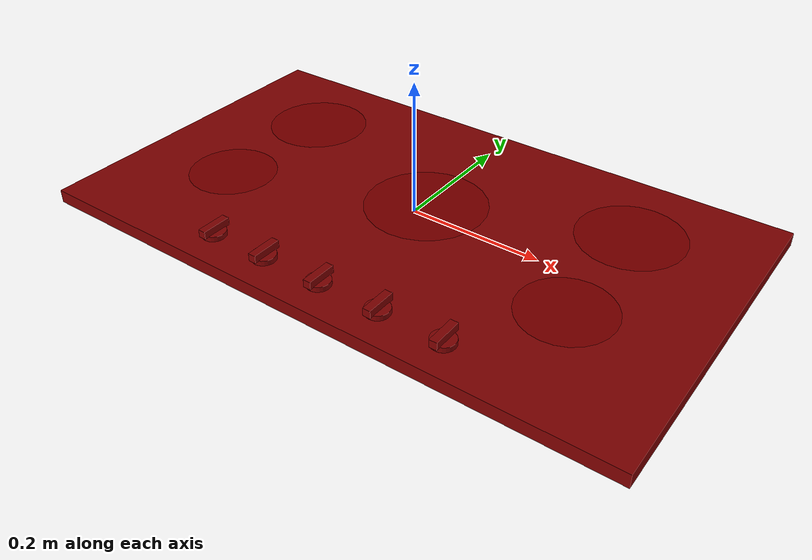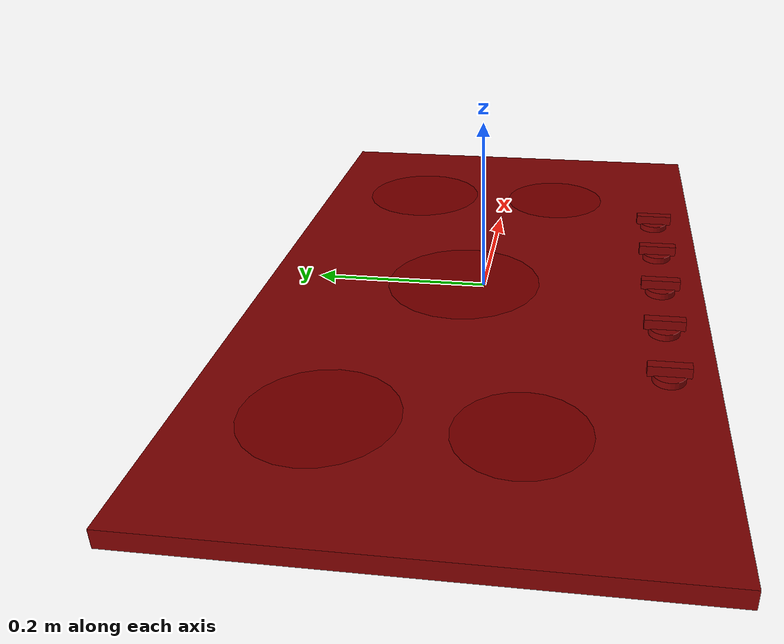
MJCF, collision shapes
<?xml version='1.0' encoding='UTF-8'?>
<mujoco model="model">
  <option timestep="0.002" gravity="0.0 0.0 -9.81"/>
  <compiler angle="radian"/>
  <asset>
    <mesh file="visuals/knob_center.obj" name="knob_center_vis"/>
    <mesh file="visuals/knob_front_left.obj" name="knob_front_left_vis"/>
    <mesh file="visuals/knob_front_right.obj" name="knob_front_right_vis"/>
    <mesh file="visuals/knob_rear_left.obj" name="knob_rear_left_vis"/>
    <mesh file="visuals/knob_rear_right.obj" name="knob_rear_right_vis"/>
    <mesh file="visuals/Body001.obj" name="Body001_vis"/>
    <texture file="visuals/T_BC001.png" name="Body001_material" type="2d"/>
    <material name="Body001_material" rgba="1 1 1 1.0" texture="Body001_material" shininess="0.1" specular="6"/>
    <texture file="visuals/T_BC001.png" name="knob_center_material" type="2d"/>
    <material name="knob_center_material" rgba="1 1 1 1.0" texture="knob_center_material" shininess="0.1" specular="6"/>
    <texture file="visuals/T_BC001.png" name="knob_front_left_material" type="2d"/>
    <material name="knob_front_left_material" rgba="1 1 1 1.0" texture="knob_front_left_material" shininess="0.1" specular="6"/>
    <texture file="visuals/T_BC001.png" name="knob_front_right_material" type="2d"/>
    <material name="knob_front_right_material" rgba="1 1 1 1.0" texture="knob_front_right_material" shininess="0.1" specular="6"/>
    <texture file="visuals/T_BC001.png" name="knob_rear_left_material" type="2d"/>
    <material name="knob_rear_left_material" rgba="1 1 1 1.0" texture="knob_rear_left_material" shininess="0.1" specular="6"/>
    <texture file="visuals/T_BC001.png" name="knob_rear_right_material" type="2d"/>
    <material name="knob_rear_right_material" rgba="1 1 1 1.0" texture="knob_rear_right_material" shininess="0.1" specular="6"/>
  </asset>
  <default>
    <default class="visual">
      <geom conaffinity="0" contype="0" group="1" type="mesh"/>
    </default>
    <default class="collision">
      <geom group="0" rgba="0.5 0 0 0.5"/>
    </default>
    <default class="spawn">
      <geom group="0" rgba="1 1 1 0.5" contype="0" conaffinity="0"/>
      <site group="0" rgba="1 1 1 0.5"/>
    </default>
    <default class="region">
      <geom group="1" conaffinity="0" contype="0" rgba="0 1 0 0"/>
    </default>
  </default>
  <worldbody>
    <body>
      <body name="object">
        <geom mesh="Body001_vis" type="mesh" solimp="0.998 0.998 0.001" solref="0.001 1" friction="0.95 0.3 0.1" class="visual" material="Body001_material"/>
        <geom class="collision" type="box" pos="0.0 -4.331173840910196e-06 -0.009615425020456314" size="0.4550013244152069 0.25999632477760315 0.010000033304095268" quat="1.0 0.0 0.0 0.0"/>
        <body name="knob_center">
          <joint axis="0.0 0.0 1.0" pos="0.0018313440959900618 -0.20912569761276245 0.009779957123100758" limited="true" name="knob_center_joint" range="0.0 3.5779249665883754" type="hinge" damping="0.2" armature="0.01" frictionloss="1"/>
          <geom mesh="knob_center_vis" type="mesh" solimp="0.998 0.998 0.001" solref="0.001 1" friction="0.95 0.3 0.1" class="visual" material="knob_center_material"/>
          <geom class="collision" type="box" pos="0.001687976997345686 -0.20864903926849365 0.014286531135439873" size="0.0057075126096606255 0.022309990599751472 0.005733962636440992" quat="1.0 0.0 0.0 0.0" name="knob_center_main" friction="100 0.5 0.01"/>
          <geom class="collision" type="cylinder" pos="0.0016382745234295726 -0.20906837284564972 0.005588534288108349" size="0.01724424958229065 0.0038178665563464165" quat="1.0 0.0 0.0 0.0" friction="100 0.5 0.01"/>
        </body>
        <body name="knob_front_left">
          <joint axis="0.0 0.0 1.0" pos="-0.18545380234718323 -0.20912569761276245 0.009779957123100758" limited="true" name="knob_front_left_joint" range="0.0 3.5779249665883754" type="hinge" damping="0.2" armature="0.01" frictionloss="1"/>
          <geom mesh="knob_front_left_vis" type="mesh" solimp="0.998 0.998 0.001" solref="0.001 1" friction="0.95 0.3 0.1" class="visual" material="knob_front_left_material"/>
          <geom class="collision" type="cylinder" pos="-0.18538932502269745 -0.20906837284564972 0.005588534288108349" size="0.01724424958229065 0.0038178665563464165" quat="1.0 0.0 0.0 0.0" friction="100 0.5 0.01"/>
          <geom class="collision" type="box" pos="-0.18508179485797882 -0.20864903926849365 0.014286531135439873" size="0.005707519128918648 0.02231001667678356 0.005733969155699015" quat="1.0 0.0 0.0 0.0" name="knob_front_left_main" friction="100 0.5 0.01"/>
        </body>
        <body name="knob_front_right">
          <joint axis="0.0 0.0 1.0" pos="0.19316482543945312 -0.20912569761276245 0.009779957123100758" limited="true" name="knob_front_right_joint" range="0.0 3.5779249665883754" type="hinge" damping="0.2" armature="0.01" frictionloss="1"/>
          <geom mesh="knob_front_right_vis" type="mesh" solimp="0.998 0.998 0.001" solref="0.001 1" friction="0.95 0.3 0.1" class="visual" material="knob_front_right_material"/>
          <geom class="collision" type="box" pos="0.19307716190814972 -0.20864903926849365 0.014286531135439873" size="0.005707506090402603 0.022309966385364532 0.00573395611718297" quat="1.0 0.0 0.0 0.0" name="knob_front_right_main" friction="100 0.5 0.01"/>
          <geom class="collision" type="cylinder" pos="0.19302745163440704 -0.20906837284564972 0.005588534288108349" size="0.01724424958229065 0.0038178665563464165" quat="1.0 0.0 0.0 0.0" friction="100 0.5 0.01"/>
        </body>
        <body name="knob_rear_left">
          <joint axis="0.0 0.0 1.0" pos="-0.09244690090417862 -0.20912569761276245 0.009779957123100758" limited="true" name="knob_rear_left_joint" range="0.0 3.5779249665883754" type="hinge" damping="0.2" armature="0.01" frictionloss="1"/>
          <geom mesh="knob_rear_left_vis" type="mesh" solimp="0.998 0.998 0.001" solref="0.001 1" friction="0.95 0.3 0.1" class="visual" material="knob_rear_left_material"/>
          <geom class="collision" type="box" pos="-0.09249898046255112 -0.20864903926849365 0.014286531135439873" size="0.005707515869289637 0.022310003638267517 0.0057339658960700035" quat="1.0 0.0 0.0 0.0" name="knob_rear_left_main" friction="100 0.5 0.01"/>
          <geom class="collision" type="cylinder" pos="-0.0925486832857132 -0.20906837284564972 0.005588534288108349" size="0.01724424958229065 0.0038178665563464165" quat="1.0 0.0 0.0 0.0" friction="100 0.5 0.01"/>
        </body>
        <body name="knob_rear_right">
          <joint axis="0.0 0.0 1.0" pos="0.0964549258351326 -0.20906837284564972 0.009779957123100758" limited="true" name="knob_rear_right_joint" range="0.0 3.5779249665883754" type="hinge" damping="0.2" armature="0.01" frictionloss="1"/>
          <geom mesh="knob_rear_right_vis" type="mesh" solimp="0.998 0.998 0.001" solref="0.001 1" friction="0.95 0.3 0.1" class="visual" material="knob_rear_right_material"/>
          <geom class="collision" type="box" pos="0.0964549258351326 -0.20906837284564972 0.014286531135439873" size="0.005707509350031614 0.022309977561235428 0.005733959376811981" quat="1.0 0.0 0.0 0.0" name="knob_rear_right_main" friction="100 0.5 0.01"/>
          <geom class="collision" type="cylinder" pos="0.0964549258351326 -0.20906837284564972 0.005588534288108349" size="0.01724424958229065 0.0038178665563464165" quat="1.0 0.0 0.0 0.0" friction="100 0.5 0.01"/>
        </body>
        <site type="cylinder" rgba="0.5 0 0 0.5" size="0.09087499976158142 0.0001" pos="0.0038360257167369127 0.024044157937169075 0.00043687407742254436" name="burner_on_center"/>
        <site type="cylinder" rgba="0.5 0 0 0.5" size="0.07873695343732834 0.0001" pos="-0.28297820687294006 0.12052332609891891 0.00043687407742254436" name="burner_on_rear_left"/>
        <site type="cylinder" rgba="0.5 0 0 0.5" size="0.07827122509479523 0.0001" pos="0.27714651823043823 0.12165854126214981 0.00043687407742254436" name="burner_on_rear_right"/>
        <site type="cylinder" rgba="0.5 0 0 0.5" size="0.06725933402776718 0.0001" pos="0.2806836664676666 -0.07058169692754745 0.0004368815280031413" name="burner_on_front_right"/>
        <site type="cylinder" rgba="0.5 0 0 0.5" size="0.06707519292831421 0.0001" pos="-0.28870126605033875 -0.07095064222812653 0.0004368815280031413" name="burner_on_front_left"/>
        <site name="burner_center_place_site" type="cylinder" rgba="0.5 0 0 0" size="0.09087499976158142 4.999999873689376e-05" pos="0.0038360257167369127 0.024044157937169075 0.00043687407742254436"/>
        <site name="burner_rear_left_place_site" type="cylinder" rgba="0.5 0 0 0" size="0.07873695343732834 4.999999873689376e-05" pos="-0.28297820687294006 0.12052332609891891 0.00043687407742254436"/>
        <site name="burner_rear_right_place_site" type="cylinder" rgba="0.5 0 0 0" size="0.07827122509479523 4.999999873689376e-05" pos="0.27714651823043823 0.12165854126214981 0.00043687407742254436"/>
        <site name="burner_front_right_place_site" type="cylinder" rgba="0.5 0 0 0" size="0.06725933402776718 4.999999873689376e-05" pos="0.2806836664676666 -0.07058169692754745 0.0004368815280031413"/>
        <site name="burner_front_left_place_site" type="cylinder" rgba="0.5 0 0 0" size="0.06707519292831421 4.999999873689376e-05" pos="-0.28870126605033875 -0.07095064222812653 0.0004368815280031413"/>
        <geom class="region" name="reg_main" type="box" pos="0.0 0.0 -0.009615450166165829" size="0.45600004291534424 0.26099999046325684 0.010999998845160008"/>
      </body>
    </body>
  </worldbody>
  <actuator>
    <motor name="knob_center_joint_actuator" joint="knob_center_joint" gear="10"/>
    <motor name="knob_front_left_joint_actuator" joint="knob_front_left_joint" gear="10"/>
    <motor name="knob_front_right_joint_actuator" joint="knob_front_right_joint" gear="10"/>
    <motor name="knob_rear_left_joint_actuator" joint="knob_rear_left_joint" gear="10"/>
    <motor name="knob_rear_right_joint_actuator" joint="knob_rear_right_joint" gear="10"/>
  </actuator>
</mujoco>
